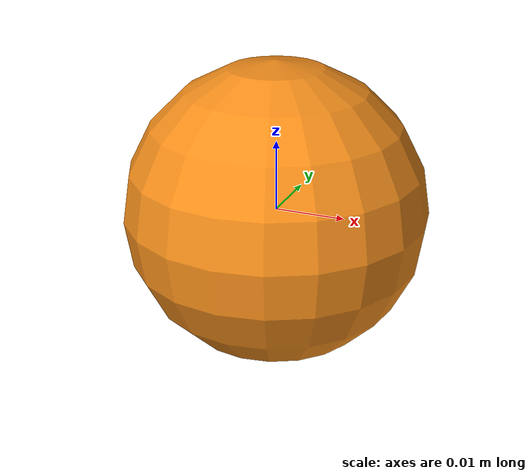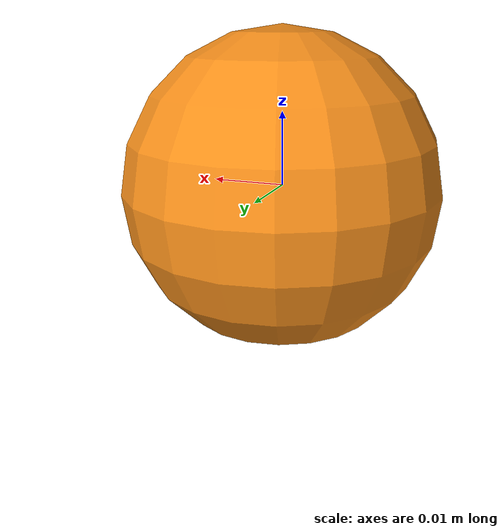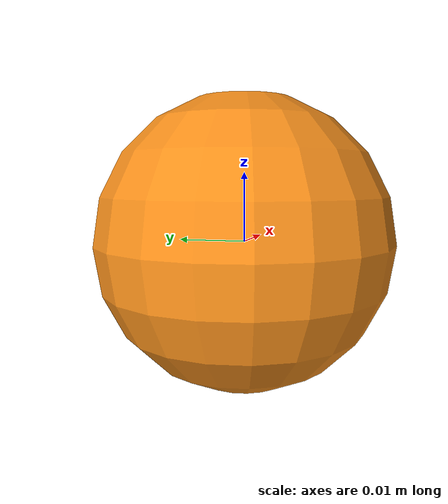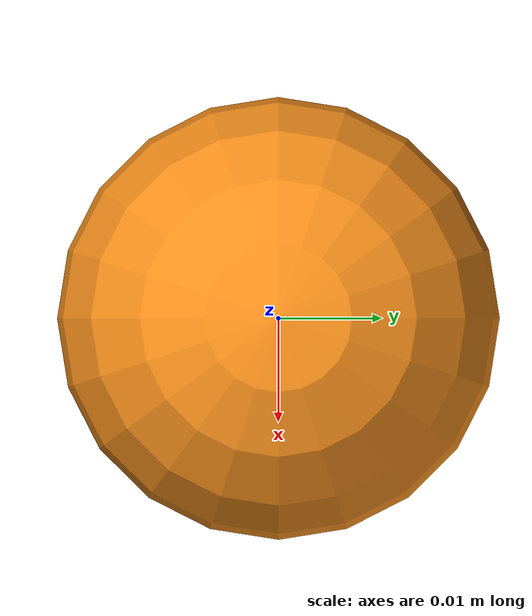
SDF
<?xml version="1.0" ?>

<!-- File generated with Gazebo Model Editor
Proprieties according to IEEE VSS 3x3 rules -->

<sdf version="1.5">
  <model name='ball'>

    <link name='sphere'>
      <inertial>
        <mass>0.046</mass>
        <inertia>
          <!-- inertia based on solid sphere 2/5 mr^2 -->
          <ixx>2.935e-05</ixx>
          <iyy>2.935e-05</iyy>
          <izz>2.935e-05</izz>
          <ixy>0</ixy>
          <ixz>0</ixz>
          <iyz>0</iyz>
        </inertia>
        <pose frame=''>0 0 0 0 0 0</pose>
      </inertial>

      <pose frame=''>0 0 0 0 0 0</pose>
      <gravity>1</gravity>
      <self_collide>0</self_collide>
      <kinematic>0</kinematic>
      <enable_wind>0</enable_wind>

      <visual name='visual'>
        <pose frame=''>0 0 0 0 0 0</pose>
        <geometry>
          <sphere>
            <radius>0.02135</radius>
          </sphere>
        </geometry>
        <material>
          <script>
            <name>Gazebo/Orange</name>
            <uri>file://media/materials/scripts/gazebo.material</uri>
          </script>
        </material>
        <transparency>0</transparency>
        <cast_shadows>0</cast_shadows>
      </visual>

      <collision name='collision'>
        <laser_retro>0</laser_retro>
        <max_contacts>10</max_contacts>
        <pose frame=''>0 0 0 0 0 0</pose>
        <geometry>
          <sphere>
            <radius>0.02135</radius>
          </sphere>
        </geometry>
        <surface>
          <friction>
            <ode>
              <mu>1</mu>
              <mu2>1</mu2>
              <fdir1>0 0 0</fdir1>
              <slip1>0</slip1>
              <slip2>0</slip2>
            </ode>
            <torsional>
              <coefficient>1</coefficient>
              <patch_radius>0</patch_radius>
              <surface_radius>0</surface_radius>
              <use_patch_radius>1</use_patch_radius>
              <ode>
                <slip>0</slip>
              </ode>
            </torsional>
          </friction>
          <bounce>
            <restitution_coefficient>0.9</restitution_coefficient>
            <threshold>1e+06</threshold>
          </bounce>
          <contact>
            <collide_without_contact>0</collide_without_contact>
            <collide_without_contact_bitmask>1</collide_without_contact_bitmask>
            <collide_bitmask>1</collide_bitmask>
            <ode>
              <soft_cfm>0</soft_cfm>
              <soft_erp>0.2</soft_erp>
              <kp>1e+13</kp>
              <kd>1</kd>
              <max_vel>10</max_vel>
              <min_depth>0</min_depth>
            </ode>
            <bullet>
              <split_impulse>1</split_impulse>
              <split_impulse_penetration_threshold>-0.01</split_impulse_penetration_threshold>
              <soft_cfm>0</soft_cfm>
              <soft_erp>0.2</soft_erp>
              <kp>1e+13</kp>
              <kd>1</kd>
            </bullet>
          </contact>
        </surface>
      </collision>
    </link>
    <static>0</static>
    <allow_auto_disable>1</allow_auto_disable>
  </model>
</sdf>
